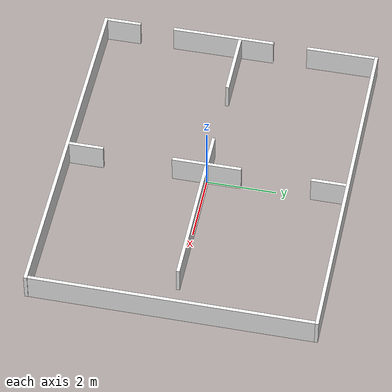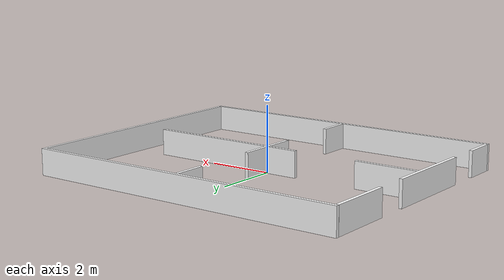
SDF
<?xml version="1.0" ?>
<sdf version="1.8">
  <model name="rcjo2025_arena_frame">
    <static>true</static>
    <link name="link">
      <inertial>
        <mass>1.0</mass>
      </inertial>

      <collision name="wall_front_left">
        <pose>-5.0 3.0 0.4 0.0 0.0 0.0</pose>
        <geometry>
          <box>
            <size>0.1 2.0 0.8</size>
          </box>
        </geometry>
      </collision>

      <visual name="wall_front_left_v">
        <pose>-5.0 3.0 0.4 0.0 0.0 0.0</pose>
        <geometry>
          <box>
            <size>0.1 2.0 0.8</size>
          </box>
        </geometry>

        <material>
          <diffuse>1.0 1.0 1.0 1.0</diffuse>
          <specular>1.0 1.0 1.0 1.0</specular>
        </material>
      </visual>

      <collision name="wall_front_center">
        <pose>-5.0 -0.5 0.4 0.0 0.0 0.0</pose>
        <geometry>
          <box>
            <size>0.1 3.0 0.8</size>
          </box>
        </geometry>
      </collision>

      <visual name="wall_front_center_v">
        <pose>-5.0 -0.5 0.4 0.0 0.0 0.0</pose>
        <geometry>
          <box>
            <size>0.1 3.0 0.8</size>
          </box>
        </geometry>

        <material>
          <diffuse>1.0 1.0 1.0 1.0</diffuse>
          <specular>1.0 1.0 1.0 1.0</specular>
        </material>
      </visual>

      <collision name="wall_front_right">
        <pose>-5.0 -3.5 0.4 0.0 0.0 0.0</pose>
        <geometry>
          <box>
            <size>0.1 1.0 0.8</size>
          </box>
        </geometry>
      </collision>

      <visual name="wall_front_right_v">
        <pose>-5.0 -3.5 0.4 0.0 0.0 0.0</pose>
        <geometry>
          <box>
            <size>0.1 1.0 0.8</size>
          </box>
        </geometry>

        <material>
          <diffuse>1.0 1.0 1.0 1.0</diffuse>
          <specular>1.0 1.0 1.0 1.0</specular>
        </material>
      </visual>

      <collision name="wall_side_right">
        <pose>0.0 -4.05 0.4 0.0 0.0 1.57</pose>
        <geometry>
          <box>
            <size>0.1 10.1 0.8</size>
          </box>
        </geometry>
      </collision>

      <visual name="wall_side_right_v">
        <pose>0.0 -4.05 0.4 0.0 0.0 1.57</pose>
        <geometry>
          <box>
            <size>0.1 10.1 0.8</size>
          </box>
        </geometry>

        <material>
          <diffuse>1.0 1.0 1.0 1.0</diffuse>
          <specular>1.0 1.0 1.0 1.0</specular>
        </material>
      </visual>

      <collision name="wall_side_left">
        <pose>0.0 4.05 0.4 0.0 0.0 1.57</pose>
        <geometry>
          <box>
            <size>0.1 10.1 0.8</size>
          </box>
        </geometry>
      </collision>

      <visual name="wall_side_left_v">
        <pose>0.0 4.05 0.4 0.0 0.0 1.57</pose>
        <geometry>
          <box>
            <size>0.1 10.1 0.8</size>
          </box>
        </geometry>

        <material>
          <diffuse>1.0 1.0 1.0 1.0</diffuse>
          <specular>1.0 1.0 1.0 1.0</specular>
        </material>
      </visual>

      <collision name="wall_back">
        <pose>5.0 0.0 0.4 0.0 0.0 0.0</pose>
        <geometry>
          <box>
            <size>0.1 8.0 0.8</size>
          </box>
        </geometry>
      </collision>

      <visual name="wall_back_v">
        <pose>5.0 0.0 0.4 0.0 0.0 0.0</pose>
        <geometry>
          <box>
            <size>0.1 8.0 0.8</size>
          </box>
        </geometry>

        <material>
          <diffuse>1.0 1.0 1.0 1.0</diffuse>
          <specular>1.0 1.0 1.0 1.0</specular>
        </material>
      </visual>

      <collision name="inside_wall_side_left">
        <pose>0.0 3.5 0.4 0.0 0.0 0.0</pose>
        <geometry>
          <box>
            <size>0.1 1.0 0.8</size>
          </box>
        </geometry>
      </collision>

      <visual name="inside_wall_side_left_v">
        <pose>0.0 3.5 0.4 0.0 0.0 0.0</pose>
        <geometry>
          <box>
            <size>0.1 1.0 0.8</size>
          </box>
        </geometry>

        <material>
          <diffuse>1.0 1.0 1.0 1.0</diffuse>
          <specular>1.0 1.0 1.0 1.0</specular>
        </material>
      </visual>

      <collision name="inside_wall_side_right">
        <pose>0.0 -3.5 0.4 0.0 0.0 0.0</pose>
        <geometry>
          <box>
            <size>0.1 1.0 0.8</size>
          </box>
        </geometry>
      </collision>

      <visual name="inside_wall_side_right_v">
        <pose>0.0 -3.5 0.4 0.0 0.0 0.0</pose>
        <geometry>
          <box>
            <size>0.1 1.0 0.8</size>
          </box>
        </geometry>

        <material>
          <diffuse>1.0 1.0 1.0 1.0</diffuse>
          <specular>1.0 1.0 1.0 1.0</specular>
        </material>
      </visual>

      <collision name="inside_wall_front">
        <pose>-4.0 0.0 0.4 0.0 0.0 1.57</pose>
        <geometry>
          <box>
            <size>0.1 2.0 0.8</size>
          </box>
        </geometry>
      </collision>

      <visual name="inside_wall_front_v">
        <pose>-4.0 0.0 0.4 0.0 0.0 1.57</pose>
        <geometry>
          <box>
            <size>0.1 2.0 0.8</size>
          </box>
        </geometry>

        <material>
          <diffuse>1.0 1.0 1.0 1.0</diffuse>
          <specular>1.0 1.0 1.0 1.0</specular>
        </material>
      </visual>

      <collision name="inside_wall_back">
        <pose>-4.0 0.0 0.4 0.0 0.0 1.57</pose>
        <geometry>
          <box>
            <size>0.1 2.0 0.8</size>
          </box>
        </geometry>
      </collision>

      <visual name="inside_wall_back_v">
        <pose>-4.0 0.0 0.4 0.0 0.0 1.57</pose>
        <geometry>
          <box>
            <size>0.1 2.0 0.8</size>
          </box>
        </geometry>

        <material>
          <diffuse>1.0 1.0 1.0 1.0</diffuse>
          <specular>1.0 1.0 1.0 1.0</specular>
        </material>
      </visual>

      <collision name="inside_wall_center_horizontal">
        <pose>0.0 0.0 0.4 0.0 0.0 0.0</pose>
        <geometry>
          <box>
            <size>0.1 2.0 0.8</size>
          </box>
        </geometry>
      </collision>

      <visual name="inside_wall_center_horizontal_v">
        <pose>0.0 0.0 0.4 0.0 0.0 0.0</pose>
        <geometry>
          <box>
            <size>0.1 2.0 0.8</size>
          </box>
        </geometry>

        <material>
          <diffuse>1.0 1.0 1.0 1.0</diffuse>
          <specular>1.0 1.0 1.0 1.0</specular>
        </material>
      </visual>

      <collision name="inside_wall_center_vertical_front">
        <pose>-0.525 0.0 0.4 0.0 0.0 1.57</pose>
        <geometry>
          <box>
            <size>0.1 0.95 0.8</size>
          </box>
        </geometry>
      </collision>

      <visual name="inside_wall_center_vertical_front_v">
        <pose>-0.525 0.0 0.4 0.0 0.0 1.57</pose>
        <geometry>
          <box>
            <size>0.1 0.95 0.8</size>
          </box>
        </geometry>

        <material>
          <diffuse>1.0 1.0 1.0 1.0</diffuse>
          <specular>1.0 1.0 1.0 1.0</specular>
        </material>
      </visual>

      <collision name="inside_wall_center_vertical_back">
        <pose>2.025 0.0 0.4 0.0 0.0 1.57</pose>
        <geometry>
          <box>
            <size>0.1 3.95 0.8</size>
          </box>
        </geometry>
      </collision>

      <visual name="inside_wall_center_vertical_back_v">
        <pose>2.025 0.0 0.4 0.0 0.0 1.57</pose>
        <geometry>
          <box>
            <size>0.1 3.95 0.8</size>
          </box>
        </geometry>

        <material>
          <diffuse>1.0 1.0 1.0 1.0</diffuse>
          <specular>1.0 1.0 1.0 1.0</specular>
        </material>
      </visual>
    </link>
  </model>
</sdf>
